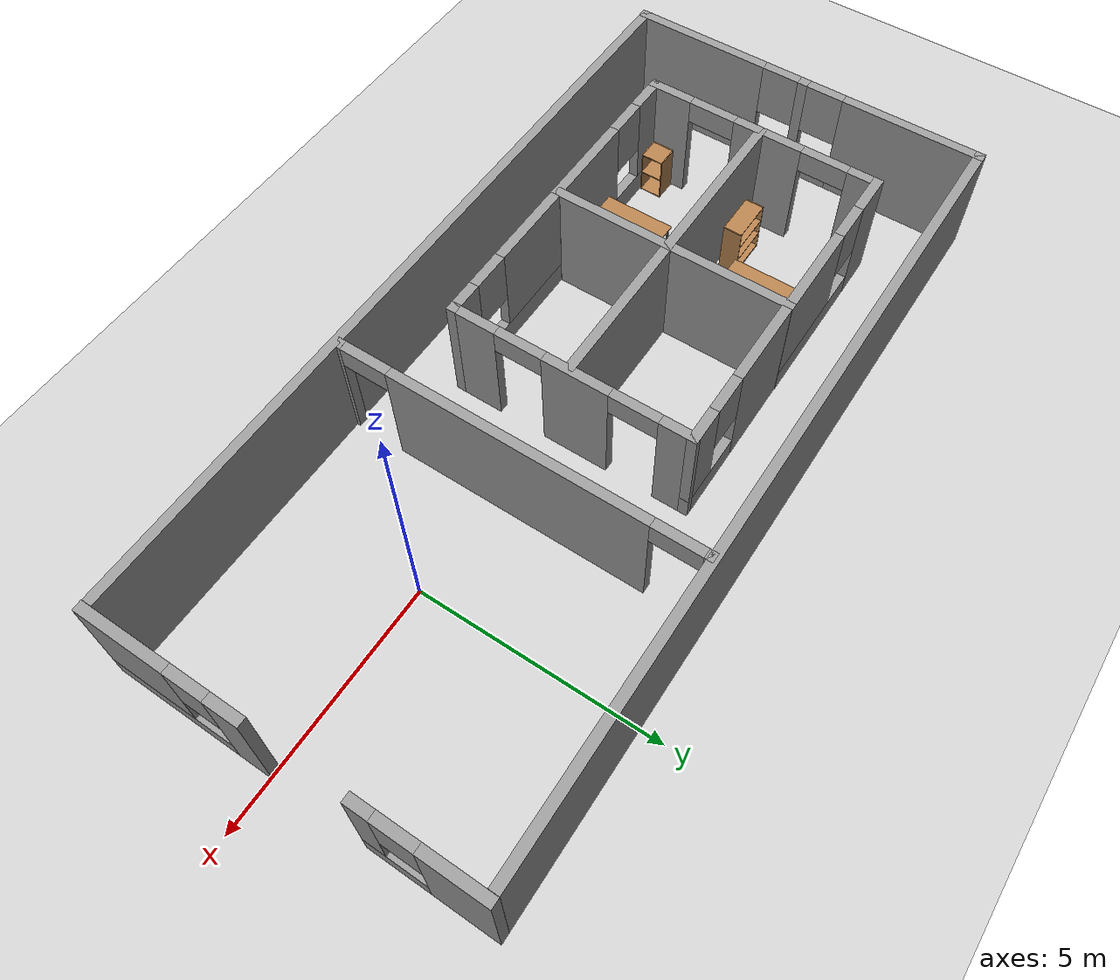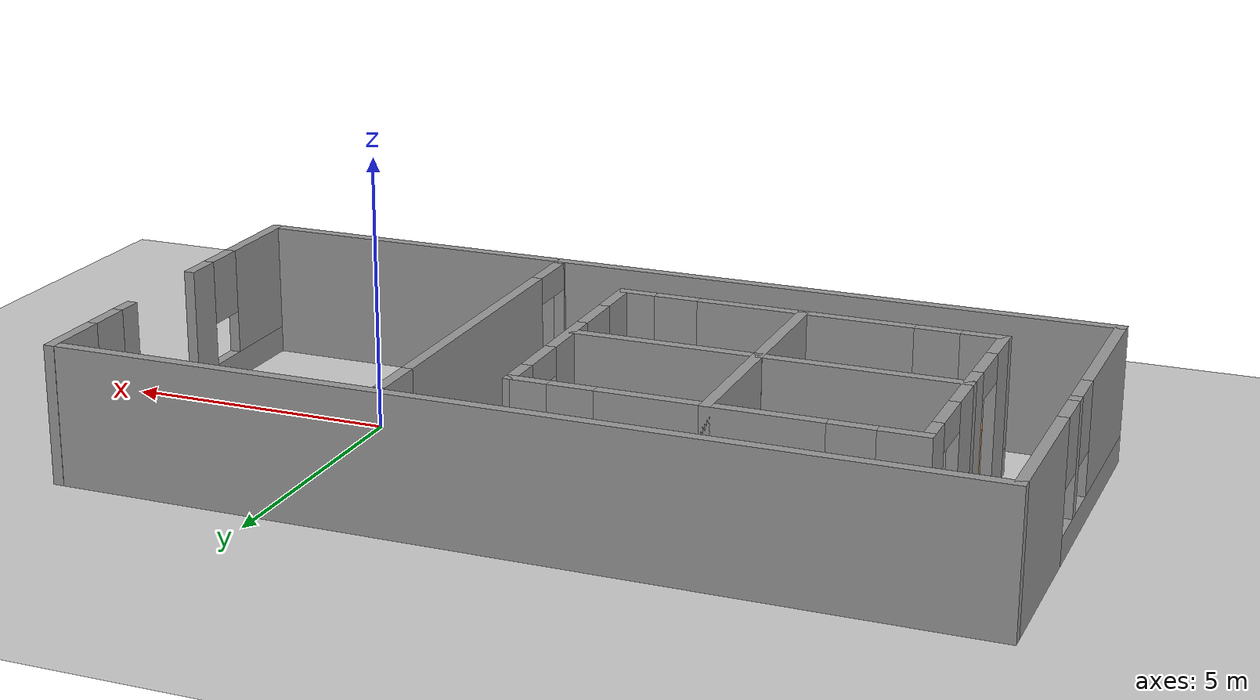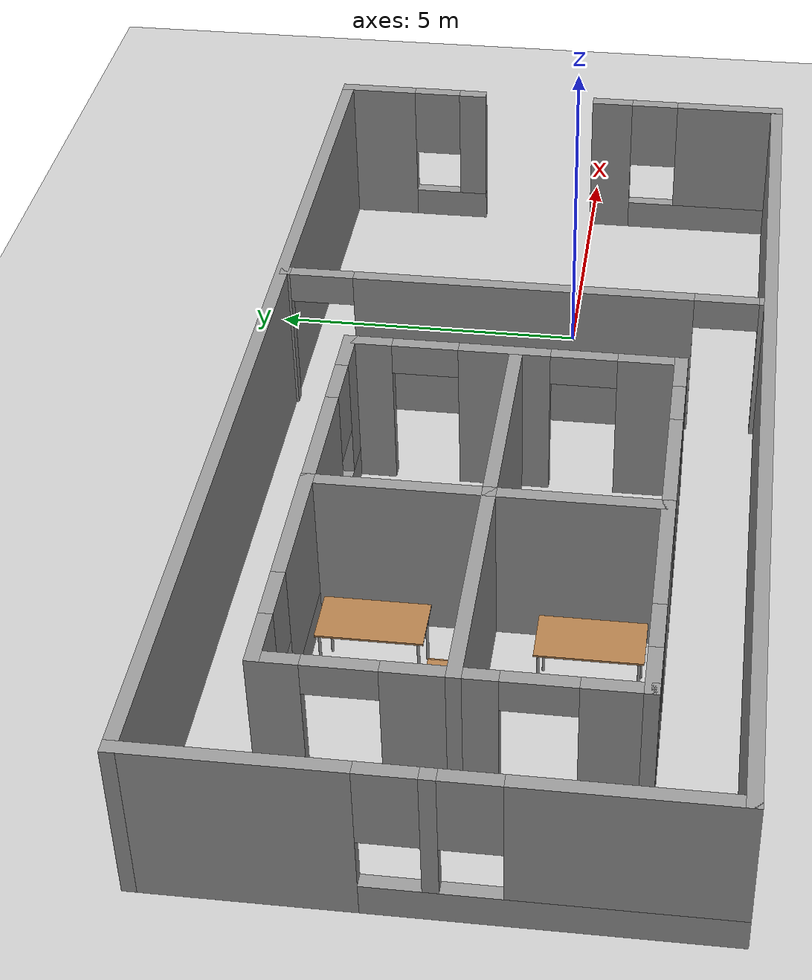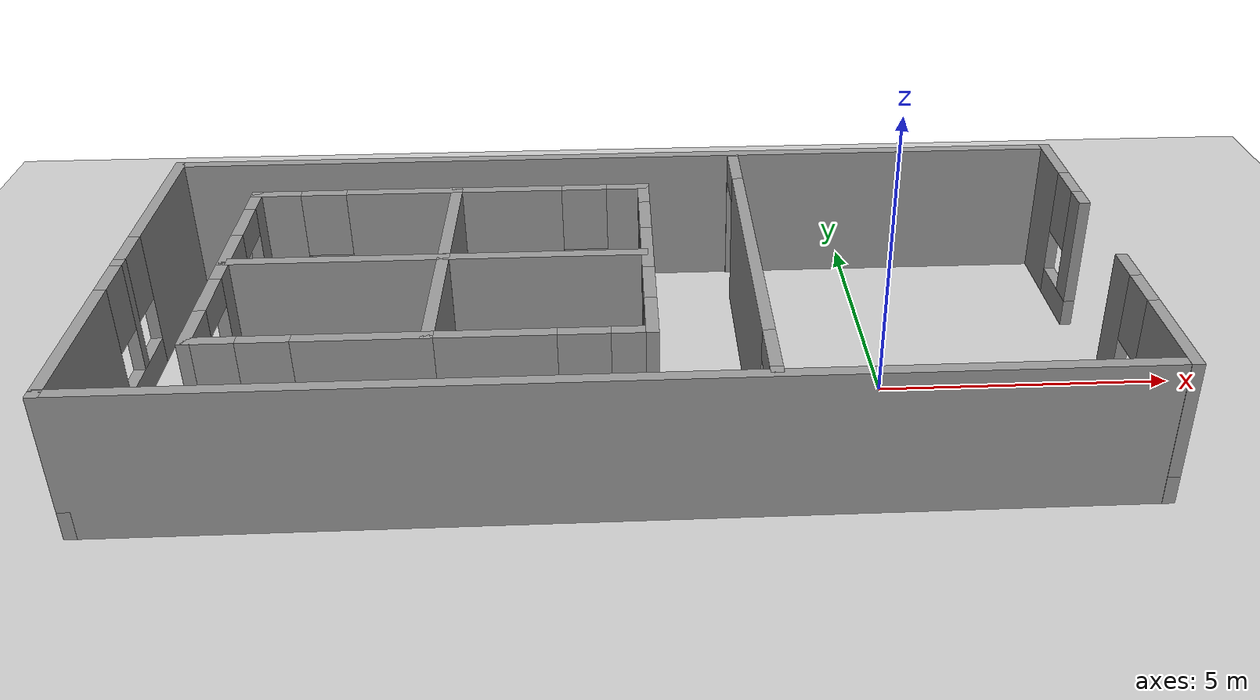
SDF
<sdf version="1.5">
 <world name="default">
  <model name="ground_plane">
   <static>1</static>
   <link name="link">
    <collision name="collision">
     <geometry><plane><normal>0 0 1</normal><size>100 100</size></plane></geometry>
     <surface><friction><ode><mu>100</mu><mu2>50</mu2></ode></friction></surface>
    </collision>
    <visual name="visual">
     <cast_shadows>0</cast_shadows>
     <geometry><plane><normal>0 0 1</normal><size>100 100</size></plane></geometry>
     <material>
      <script><uri>file://media/materials/scripts/gazebo.material</uri><name>Gazebo/Grey</name></script>
     </material>
    </visual>
    <velocity_decay><linear>0</linear><angular>0</angular></velocity_decay>
   </link>
  </model>
  <model name="customSmallBuildingOne">
   <pose>-8 3 0 0 -0 0</pose>
   <link name="Wall_10">
    <collision name="Wall_10_Collision">
     <geometry><box><size>2.65184 0.2 2.5</size></box></geometry>
     <pose>0 0 1.25 0 -0 0</pose>
    </collision>
    <visual name="Wall_10_Visual">
     <pose>0 0 1.25 0 -0 0</pose>
     <geometry><box><size>2.65184 0.2 2.5</size></box></geometry>
     <material>
      <script><uri>file://media/materials/scripts/gazebo.material</uri><name>Gazebo/Grey</name></script>
     </material>
    </visual>
    <velocity_decay><linear>0</linear><angular>0</angular></velocity_decay>
    <pose>0.733857 -3.69181 0 0 0 -1.5708</pose>
   </link>
   <link name="Wall_11">
    <pose>-1.03564 -4.91773 0 0 -0 3.14159</pose>
    <visual name="Wall_11_Visual_0">
     <pose>-0.819487 0 1.25 0 -0 0</pose>
     <geometry><box><size>2.10008 0.2 2.5</size></box></geometry>
     <material>
      <script><uri>file://media/materials/scripts/gazebo.material</uri><name>Gazebo/Grey</name></script>
     </material>
    </visual>
    <collision name="Wall_11_Collision_0">
     <geometry><box><size>2.10008 0.2 2.5</size></box></geometry>
     <pose>-0.819487 0 1.25 0 -0 0</pose>
    </collision>
    <visual name="Wall_11_Visual_1">
     <pose>1.05004 0 0.25 0 -0 0</pose>
     <geometry><box><size>1.63897 0.2 0.5</size></box></geometry>
     <material>
      <script><uri>file://media/materials/scripts/gazebo.material</uri><name>Gazebo/Grey</name></script>
     </material>
    </visual>
    <collision name="Wall_11_Collision_1">
     <geometry><box><size>1.63897 0.2 0.5</size></box></geometry>
     <pose>1.05004 0 0.25 0 -0 0</pose>
    </collision>
    <visual name="Wall_11_Visual_2">
     <pose>1.45004 0 1.5 0 -0 0</pose>
     <geometry><box><size>0.838974 0.2 2</size></box></geometry>
     <material>
      <script><uri>file://media/materials/scripts/gazebo.material</uri><name>Gazebo/Grey</name></script>
     </material>
    </visual>
    <collision name="Wall_11_Collision_2">
     <geometry><box><size>0.838974 0.2 2</size></box></geometry>
     <pose>1.45004 0 1.5 0 -0 0</pose>
    </collision>
    <visual name="Wall_11_Visual_3">
     <pose>0.630556 0 1.9 0 -0 0</pose>
     <geometry><box><size>0.8 0.2 1.2</size></box></geometry>
     <material>
      <script><uri>file://media/materials/scripts/gazebo.material</uri><name>Gazebo/Grey</name></script>
     </material>
    </visual>
    <collision name="Wall_11_Collision_3">
     <geometry><box><size>0.8 0.2 1.2</size></box></geometry>
     <pose>0.630556 0 1.9 0 -0 0</pose>
    </collision>
    <velocity_decay><linear>0</linear><angular>0</angular></velocity_decay>
   </link>
   <link name="Wall_12">
    <pose>-2.80513 -3.73807 0 0 -0 1.5708</pose>
    <visual name="Wall_12_Visual_0">
     <pose>-0.787375 0 1.25 0 -0 0</pose>
     <geometry><box><size>0.984572 0.2 2.5</size></box></geometry>
     <material>
      <script><uri>file://media/materials/scripts/gazebo.material</uri><name>Gazebo/Grey</name></script>
     </material>
    </visual>
    <collision name="Wall_12_Collision_0">
     <geometry><box><size>0.984572 0.2 2.5</size></box></geometry>
     <pose>-0.787375 0 1.25 0 -0 0</pose>
    </collision>
    <visual name="Wall_12_Visual_1">
     <pose>0.992286 0 1.25 0 -0 0</pose>
     <geometry><box><size>0.57475 0.2 2.5</size></box></geometry>
     <material>
      <script><uri>file://media/materials/scripts/gazebo.material</uri><name>Gazebo/Grey</name></script>
     </material>
    </visual>
    <collision name="Wall_12_Collision_1">
     <geometry><box><size>0.57475 0.2 2.5</size></box></geometry>
     <pose>0.992286 0 1.25 0 -0 0</pose>
    </collision>
    <visual name="Wall_12_Visual_2">
     <pose>0.204911 0 2.25 0 -0 0</pose>
     <geometry><box><size>1 0.2 0.5</size></box></geometry>
     <material>
      <script><uri>file://media/materials/scripts/gazebo.material</uri><name>Gazebo/Grey</name></script>
     </material>
    </visual>
    <collision name="Wall_12_Collision_2">
     <geometry><box><size>1 0.2 0.5</size></box></geometry>
     <pose>0.204911 0 2.25 0 -0 0</pose>
    </collision>
    <velocity_decay><linear>0</linear><angular>0</angular></velocity_decay>
   </link>
   <link name="Wall_14">
    <pose>2.49225 0.05375 0 0 0 -0.000166</pose>
    <visual name="Wall_14_Visual_0">
     <pose>-0.782153 0 1.25 0 -0 0</pose>
     <geometry><box><size>1.78542 0.2 2.5</size></box></geometry>
     <material>
      <script><uri>file://media/materials/scripts/gazebo.material</uri><name>Gazebo/Grey</name></script>
     </material>
    </visual>
    <collision name="Wall_14_Collision_0">
     <geometry><box><size>1.78542 0.2 2.5</size></box></geometry>
     <pose>-0.782153 0 1.25 0 -0 0</pose>
    </collision>
    <visual name="Wall_14_Visual_1">
     <pose>0.892709 0 0.25 0 -0 0</pose>
     <geometry><box><size>1.56431 0.2 0.5</size></box></geometry>
     <material>
      <script><uri>file://media/materials/scripts/gazebo.material</uri><name>Gazebo/Grey</name></script>
     </material>
    </visual>
    <collision name="Wall_14_Collision_1">
     <geometry><box><size>1.56431 0.2 0.5</size></box></geometry>
     <pose>0.892709 0 0.25 0 -0 0</pose>
    </collision>
    <visual name="Wall_14_Visual_2">
     <pose>1.29271 0 1.5 0 -0 0</pose>
     <geometry><box><size>0.764306 0.2 2</size></box></geometry>
     <material>
      <script><uri>file://media/materials/scripts/gazebo.material</uri><name>Gazebo/Grey</name></script>
     </material>
    </visual>
    <collision name="Wall_14_Collision_2">
     <geometry><box><size>0.764306 0.2 2</size></box></geometry>
     <pose>1.29271 0 1.5 0 -0 0</pose>
    </collision>
    <visual name="Wall_14_Visual_3">
     <pose>0.510556 0 1.9 0 -0 0</pose>
     <geometry><box><size>0.8 0.2 1.2</size></box></geometry>
     <material>
      <script><uri>file://media/materials/scripts/gazebo.material</uri><name>Gazebo/Grey</name></script>
     </material>
    </visual>
    <collision name="Wall_14_Collision_3">
     <geometry><box><size>0.8 0.2 1.2</size></box></geometry>
     <pose>0.510556 0 1.9 0 -0 0</pose>
    </collision>
    <velocity_decay><linear>0</linear><angular>0</angular></velocity_decay>
   </link>
   <link name="Wall_15">
    <pose>4.06697 -2.43328 0 0 0 -1.5708</pose>
    <visual name="Wall_15_Visual_0">
     <pose>-2.21084 0 1.25 0 -0 0</pose>
     <geometry><box><size>0.751862 0.2 2.5</size></box></geometry>
     <material>
      <script><uri>file://media/materials/scripts/gazebo.material</uri><name>Gazebo/Grey</name></script>
     </material>
    </visual>
    <collision name="Wall_15_Collision_0">
     <geometry><box><size>0.751862 0.2 2.5</size></box></geometry>
     <pose>-2.21084 0 1.25 0 -0 0</pose>
    </collision>
    <visual name="Wall_15_Visual_1">
     <pose>-0.143604 0 1.25 0 -0 0</pose>
     <geometry><box><size>1.38261 0.2 2.5</size></box></geometry>
     <material>
      <script><uri>file://media/materials/scripts/gazebo.material</uri><name>Gazebo/Grey</name></script>
     </material>
    </visual>
    <collision name="Wall_15_Collision_1">
     <geometry><box><size>1.38261 0.2 2.5</size></box></geometry>
     <pose>-0.143604 0 1.25 0 -0 0</pose>
    </collision>
    <visual name="Wall_15_Visual_2">
     <pose>2.06724 0 1.25 0 -0 0</pose>
     <geometry><box><size>1.03907 0.2 2.5</size></box></geometry>
     <material>
      <script><uri>file://media/materials/scripts/gazebo.material</uri><name>Gazebo/Grey</name></script>
     </material>
    </visual>
    <collision name="Wall_15_Collision_2">
     <geometry><box><size>1.03907 0.2 2.5</size></box></geometry>
     <pose>2.06724 0 1.25 0 -0 0</pose>
    </collision>
    <visual name="Wall_15_Visual_3">
     <pose>-1.33491 0 2.25 0 -0 0</pose>
     <geometry><box><size>1 0.2 0.5</size></box></geometry>
     <material>
      <script><uri>file://media/materials/scripts/gazebo.material</uri><name>Gazebo/Grey</name></script>
     </material>
    </visual>
    <collision name="Wall_15_Collision_3">
     <geometry><box><size>1 0.2 0.5</size></box></geometry>
     <pose>-1.33491 0 2.25 0 -0 0</pose>
    </collision>
    <visual name="Wall_15_Visual_4">
     <pose>1.0477 0 2.25 0 -0 0</pose>
     <geometry><box><size>1 0.2 0.5</size></box></geometry>
     <material>
      <script><uri>file://media/materials/scripts/gazebo.material</uri><name>Gazebo/Grey</name></script>
     </material>
    </visual>
    <collision name="Wall_15_Collision_4">
     <geometry><box><size>1 0.2 0.5</size></box></geometry>
     <pose>1.0477 0 2.25 0 -0 0</pose>
    </collision>
    <velocity_decay><linear>0</linear><angular>0</angular></velocity_decay>
   </link>
   <link name="Wall_16">
    <pose>2.49625 -4.92005 0 0 -0 3.14159</pose>
    <visual name="Wall_16_Visual_0">
     <pose>-1.31164 0 1.25 0 -0 0</pose>
     <geometry><box><size>0.718161 0.2 2.5</size></box></geometry>
     <material>
      <script><uri>file://media/materials/scripts/gazebo.material</uri><name>Gazebo/Grey</name></script>
     </material>
    </visual>
    <collision name="Wall_16_Collision_0">
     <geometry><box><size>0.718161 0.2 2.5</size></box></geometry>
     <pose>-1.31164 0 1.25 0 -0 0</pose>
    </collision>
    <visual name="Wall_16_Visual_1">
     <pose>0.35908 0 0.25 0 -0 0</pose>
     <geometry><box><size>2.62327 0.2 0.5</size></box></geometry>
     <material>
      <script><uri>file://media/materials/scripts/gazebo.material</uri><name>Gazebo/Grey</name></script>
     </material>
    </visual>
    <collision name="Wall_16_Collision_1">
     <geometry><box><size>2.62327 0.2 0.5</size></box></geometry>
     <pose>0.35908 0 0.25 0 -0 0</pose>
    </collision>
    <visual name="Wall_16_Visual_2">
     <pose>0.75908 0 1.5 0 -0 0</pose>
     <geometry><box><size>1.82327 0.2 2</size></box></geometry>
     <material>
      <script><uri>file://media/materials/scripts/gazebo.material</uri><name>Gazebo/Grey</name></script>
     </material>
    </visual>
    <collision name="Wall_16_Collision_2">
     <geometry><box><size>1.82327 0.2 2</size></box></geometry>
     <pose>0.75908 0 1.5 0 -0 0</pose>
    </collision>
    <visual name="Wall_16_Visual_3">
     <pose>-0.552556 0 1.9 0 -0 0</pose>
     <geometry><box><size>0.8 0.2 1.2</size></box></geometry>
     <material>
      <script><uri>file://media/materials/scripts/gazebo.material</uri><name>Gazebo/Grey</name></script>
     </material>
    </visual>
    <collision name="Wall_16_Collision_3">
     <geometry><box><size>0.8 0.2 1.2</size></box></geometry>
     <pose>-0.552556 0 1.9 0 -0 0</pose>
    </collision>
    <velocity_decay><linear>0</linear><angular>0</angular></velocity_decay>
   </link>
   <link name="Wall_18">
    <collision name="Wall_18_Collision">
     <geometry><box><size>3.35035 0.2 2.5</size></box></geometry>
     <pose>0 0 1.25 0 -0 0</pose>
    </collision>
    <visual name="Wall_18_Visual">
     <pose>0 0 1.25 0 -0 0</pose>
     <geometry><box><size>3.35035 0.2 2.5</size></box></geometry>
     <material>
      <script><uri>file://media/materials/scripts/gazebo.material</uri><name>Gazebo/Grey</name></script>
     </material>
    </visual>
    <velocity_decay><linear>0</linear><angular>0</angular></velocity_decay>
    <pose>2.40459 -2.46784 0 0 -0 0</pose>
   </link>
   <link name="Wall_20">
    <collision name="Wall_20_Collision">
     <geometry><box><size>16.3321 0.2 2.5</size></box></geometry>
     <pose>0 0 1.25 0 -0 0</pose>
    </collision>
    <visual name="Wall_20_Visual">
     <pose>0 0 1.25 0 -0 0</pose>
     <geometry><box><size>16.3321 0.2 2.5</size></box></geometry>
     <material>
      <script><uri>file://media/materials/scripts/gazebo.material</uri><name>Gazebo/Grey</name></script>
     </material>
    </visual>
    <velocity_decay><linear>0</linear><angular>0</angular></velocity_decay>
    <pose>3.54751 1.432 0 0 -0 3.14159</pose>
   </link>
   <link name="Wall_21">
    <pose>-4.51852 -2.38615 0 0 0 -1.5708</pose>
    <visual name="Wall_21_Visual_0">
     <pose>-2.40862 0 1.25 0 -0 0</pose>
     <geometry><box><size>3.01908 0.2 2.5</size></box></geometry>
     <material>
      <script><uri>file://media/materials/scripts/gazebo.material</uri><name>Gazebo/Grey</name></script>
     </material>
    </visual>
    <collision name="Wall_21_Collision_0">
     <geometry><box><size>3.01908 0.2 2.5</size></box></geometry>
     <pose>-2.40862 0 1.25 0 -0 0</pose>
    </collision>
    <visual name="Wall_21_Visual_1">
     <pose>1.50954 0 0.25 0 -0 0</pose>
     <geometry><box><size>4.81724 0.2 0.5</size></box></geometry>
     <material>
      <script><uri>file://media/materials/scripts/gazebo.material</uri><name>Gazebo/Grey</name></script>
     </material>
    </visual>
    <collision name="Wall_21_Collision_1">
     <geometry><box><size>4.81724 0.2 0.5</size></box></geometry>
     <pose>1.50954 0 0.25 0 -0 0</pose>
    </collision>
    <visual name="Wall_21_Visual_2">
     <pose>0.008131 0 1.5 0 -0 0</pose>
     <geometry><box><size>0.214424 0.2 2</size></box></geometry>
     <material>
      <script><uri>file://media/materials/scripts/gazebo.material</uri><name>Gazebo/Grey</name></script>
     </material>
    </visual>
    <collision name="Wall_21_Collision_2">
     <geometry><box><size>0.214424 0.2 2</size></box></geometry>
     <pose>0.008131 0 1.5 0 -0 0</pose>
    </collision>
    <visual name="Wall_21_Visual_3">
     <pose>2.41675 0 1.5 0 -0 0</pose>
     <geometry><box><size>3.00281 0.2 2</size></box></geometry>
     <material>
      <script><uri>file://media/materials/scripts/gazebo.material</uri><name>Gazebo/Grey</name></script>
     </material>
    </visual>
    <collision name="Wall_21_Collision_3">
     <geometry><box><size>3.00281 0.2 2</size></box></geometry>
     <pose>2.41675 0 1.5 0 -0 0</pose>
    </collision>
    <visual name="Wall_21_Visual_4">
     <pose>-0.499081 0 1.9 0 -0 0</pose>
     <geometry><box><size>0.8 0.2 1.2</size></box></geometry>
     <material>
      <script><uri>file://media/materials/scripts/gazebo.material</uri><name>Gazebo/Grey</name></script>
     </material>
    </visual>
    <collision name="Wall_21_Collision_4">
     <geometry><box><size>0.8 0.2 1.2</size></box></geometry>
     <pose>-0.499081 0 1.9 0 -0 0</pose>
    </collision>
    <visual name="Wall_21_Visual_5">
     <pose>0.515343 0 1.9 0 -0 0</pose>
     <geometry><box><size>0.8 0.2 1.2</size></box></geometry>
     <material>
      <script><uri>file://media/materials/scripts/gazebo.material</uri><name>Gazebo/Grey</name></script>
     </material>
    </visual>
    <collision name="Wall_21_Collision_5">
     <geometry><box><size>0.8 0.2 1.2</size></box></geometry>
     <pose>0.515343 0 1.9 0 -0 0</pose>
    </collision>
    <velocity_decay><linear>0</linear><angular>0</angular></velocity_decay>
   </link>
   <link name="Wall_22">
    <collision name="Wall_22_Collision">
     <geometry><box><size>16.332 0.2 2.5</size></box></geometry>
     <pose>0 0 1.25 0 -0 0</pose>
    </collision>
    <visual name="Wall_22_Visual">
     <pose>0 0 1.25 0 -0 0</pose>
     <geometry><box><size>16.332 0.2 2.5</size></box></geometry>
     <material>
      <script><uri>file://media/materials/scripts/gazebo.material</uri><name>Gazebo/Grey</name></script>
     </material>
    </visual>
    <velocity_decay><linear>0</linear><angular>0</angular></velocity_decay>
    <pose>3.54748 -6.20431 0 0 -0 0</pose>
   </link>
   <link name="Wall_26">
    <pose>11.8165 0.244091 0 0 0 -1.5708</pose>
    <visual name="Wall_26_Visual_0">
     <pose>-0.634637 0 1.25 0 -0 0</pose>
     <geometry><box><size>1.30861 0.2 2.5</size></box></geometry>
     <material>
      <script><uri>file://media/materials/scripts/gazebo.material</uri><name>Gazebo/Grey</name></script>
     </material>
    </visual>
    <collision name="Wall_26_Collision_0">
     <geometry><box><size>1.30861 0.2 2.5</size></box></geometry>
     <pose>-0.634637 0 1.25 0 -0 0</pose>
    </collision>
    <visual name="Wall_26_Visual_1">
     <pose>0.654305 0 0.25 0 -0 0</pose>
     <geometry><box><size>1.26927 0.2 0.5</size></box></geometry>
     <material>
      <script><uri>file://media/materials/scripts/gazebo.material</uri><name>Gazebo/Grey</name></script>
     </material>
    </visual>
    <collision name="Wall_26_Collision_1">
     <geometry><box><size>1.26927 0.2 0.5</size></box></geometry>
     <pose>0.654305 0 0.25 0 -0 0</pose>
    </collision>
    <visual name="Wall_26_Visual_2">
     <pose>1.05431 0 1.5 0 -0 0</pose>
     <geometry><box><size>0.469275 0.2 2</size></box></geometry>
     <material>
      <script><uri>file://media/materials/scripts/gazebo.material</uri><name>Gazebo/Grey</name></script>
     </material>
    </visual>
    <collision name="Wall_26_Collision_2">
     <geometry><box><size>0.469275 0.2 2</size></box></geometry>
     <pose>1.05431 0 1.5 0 -0 0</pose>
    </collision>
    <visual name="Wall_26_Visual_3">
     <pose>0.419668 0 1.9 0 -0 0</pose>
     <geometry><box><size>0.8 0.2 1.2</size></box></geometry>
     <material>
      <script><uri>file://media/materials/scripts/gazebo.material</uri><name>Gazebo/Grey</name></script>
     </material>
    </visual>
    <collision name="Wall_26_Collision_3">
     <geometry><box><size>0.8 0.2 1.2</size></box></geometry>
     <pose>0.419668 0 1.9 0 -0 0</pose>
    </collision>
    <velocity_decay><linear>0</linear><angular>0</angular></velocity_decay>
   </link>
   <link name="Wall_28">
    <pose>11.8165 -4.63463 0 0 0 -1.5708</pose>
    <visual name="Wall_28_Visual_0">
     <pose>-1.32234 0 1.25 0 -0 0</pose>
     <geometry><box><size>0.702876 0.2 2.5</size></box></geometry>
     <material>
      <script><uri>file://media/materials/scripts/gazebo.material</uri><name>Gazebo/Grey</name></script>
     </material>
    </visual>
    <collision name="Wall_28_Collision_0">
     <geometry><box><size>0.702876 0.2 2.5</size></box></geometry>
     <pose>-1.32234 0 1.25 0 -0 0</pose>
    </collision>
    <visual name="Wall_28_Visual_1">
     <pose>0.351438 0 0.25 0 -0 0</pose>
     <geometry><box><size>2.64467 0.2 0.5</size></box></geometry>
     <material>
      <script><uri>file://media/materials/scripts/gazebo.material</uri><name>Gazebo/Grey</name></script>
     </material>
    </visual>
    <collision name="Wall_28_Collision_1">
     <geometry><box><size>2.64467 0.2 0.5</size></box></geometry>
     <pose>0.351438 0 0.25 0 -0 0</pose>
    </collision>
    <visual name="Wall_28_Visual_2">
     <pose>0.751438 0 1.5 0 -0 0</pose>
     <geometry><box><size>1.84467 0.2 2</size></box></geometry>
     <material>
      <script><uri>file://media/materials/scripts/gazebo.material</uri><name>Gazebo/Grey</name></script>
     </material>
    </visual>
    <collision name="Wall_28_Collision_2">
     <geometry><box><size>1.84467 0.2 2</size></box></geometry>
     <pose>0.751438 0 1.5 0 -0 0</pose>
    </collision>
    <visual name="Wall_28_Visual_3">
     <pose>-0.570899 0 1.9 0 -0 0</pose>
     <geometry><box><size>0.8 0.2 1.2</size></box></geometry>
     <material>
      <script><uri>file://media/materials/scripts/gazebo.material</uri><name>Gazebo/Grey</name></script>
     </material>
    </visual>
    <collision name="Wall_28_Collision_3">
     <geometry><box><size>0.8 0.2 1.2</size></box></geometry>
     <pose>-0.570899 0 1.9 0 -0 0</pose>
    </collision>
    <velocity_decay><linear>0</linear><angular>0</angular></velocity_decay>
   </link>
   <link name="Wall_30">
    <pose>5.79523 -2.38415 0 0 0 -1.5708</pose>
    <visual name="Wall_30_Visual_0">
     <pose>-3.75962 0 1.25 0 -0 0</pose>
     <geometry><box><size>0.16612 0.2 2.5</size></box></geometry>
     <material>
      <script><uri>file://media/materials/scripts/gazebo.material</uri><name>Gazebo/Grey</name></script>
     </material>
    </visual>
    <collision name="Wall_30_Collision_0">
     <geometry><box><size>0.16612 0.2 2.5</size></box></geometry>
     <pose>-3.75962 0 1.25 0 -0 0</pose>
    </collision>
    <visual name="Wall_30_Visual_1">
     <pose>-0.0137 0 1.25 0 -0 0</pose>
     <geometry><box><size>5.32571 0.2 2.5</size></box></geometry>
     <material>
      <script><uri>file://media/materials/scripts/gazebo.material</uri><name>Gazebo/Grey</name></script>
     </material>
    </visual>
    <collision name="Wall_30_Collision_1">
     <geometry><box><size>5.32571 0.2 2.5</size></box></geometry>
     <pose>-0.0137 0 1.25 0 -0 0</pose>
    </collision>
    <visual name="Wall_30_Visual_2">
     <pose>3.74592 0 1.25 0 -0 0</pose>
     <geometry><box><size>0.193521 0.2 2.5</size></box></geometry>
     <material>
      <script><uri>file://media/materials/scripts/gazebo.material</uri><name>Gazebo/Grey</name></script>
     </material>
    </visual>
    <collision name="Wall_30_Collision_2">
     <geometry><box><size>0.193521 0.2 2.5</size></box></geometry>
     <pose>3.74592 0 1.25 0 -0 0</pose>
    </collision>
    <visual name="Wall_30_Visual_3">
     <pose>-3.17656 0 2.25 0 -0 0</pose>
     <geometry><box><size>1 0.2 0.5</size></box></geometry>
     <material>
      <script><uri>file://media/materials/scripts/gazebo.material</uri><name>Gazebo/Grey</name></script>
     </material>
    </visual>
    <collision name="Wall_30_Collision_3">
     <geometry><box><size>1 0.2 0.5</size></box></geometry>
     <pose>-3.17656 0 2.25 0 -0 0</pose>
    </collision>
    <visual name="Wall_30_Visual_4">
     <pose>3.14915 0 2.25 0 -0 0</pose>
     <geometry><box><size>1 0.2 0.5</size></box></geometry>
     <material>
      <script><uri>file://media/materials/scripts/gazebo.material</uri><name>Gazebo/Grey</name></script>
     </material>
    </visual>
    <collision name="Wall_30_Collision_4">
     <geometry><box><size>1 0.2 0.5</size></box></geometry>
     <pose>3.14915 0 2.25 0 -0 0</pose>
    </collision>
    <velocity_decay><linear>0</linear><angular>0</angular></velocity_decay>
   </link>
   <link name="Wall_5">
    <pose>-1.03527 0.061251 0 0 -0 0</pose>
    <visual name="Wall_5_Visual_0">
     <pose>-1.43006 0 1.25 0 -0 0</pose>
     <geometry><box><size>0.879876 0.2 2.5</size></box></geometry>
     <material>
      <script><uri>file://media/materials/scripts/gazebo.material</uri><name>Gazebo/Grey</name></script>
     </material>
    </visual>
    <collision name="Wall_5_Collision_0">
     <geometry><box><size>0.879876 0.2 2.5</size></box></geometry>
     <pose>-1.43006 0 1.25 0 -0 0</pose>
    </collision>
    <visual name="Wall_5_Visual_1">
     <pose>0.439938 0 0.25 0 -0 0</pose>
     <geometry><box><size>2.86012 0.2 0.5</size></box></geometry>
     <material>
      <script><uri>file://media/materials/scripts/gazebo.material</uri><name>Gazebo/Grey</name></script>
     </material>
    </visual>
    <collision name="Wall_5_Collision_1">
     <geometry><box><size>2.86012 0.2 0.5</size></box></geometry>
     <pose>0.439938 0 0.25 0 -0 0</pose>
    </collision>
    <visual name="Wall_5_Visual_2">
     <pose>0.839938 0 1.5 0 -0 0</pose>
     <geometry><box><size>2.06012 0.2 2</size></box></geometry>
     <material>
      <script><uri>file://media/materials/scripts/gazebo.material</uri><name>Gazebo/Grey</name></script>
     </material>
    </visual>
    <collision name="Wall_5_Collision_2">
     <geometry><box><size>2.06012 0.2 2</size></box></geometry>
     <pose>0.839938 0 1.5 0 -0 0</pose>
    </collision>
    <visual name="Wall_5_Visual_3">
     <pose>-0.590124 0 1.9 0 -0 0</pose>
     <geometry><box><size>0.8 0.2 1.2</size></box></geometry>
     <material>
      <script><uri>file://media/materials/scripts/gazebo.material</uri><name>Gazebo/Grey</name></script>
     </material>
    </visual>
    <collision name="Wall_5_Collision_3">
     <geometry><box><size>0.8 0.2 1.2</size></box></geometry>
     <pose>-0.590124 0 1.9 0 -0 0</pose>
    </collision>
    <velocity_decay><linear>0</linear><angular>0</angular></velocity_decay>
   </link>
   <link name="Wall_6">
    <collision name="Wall_6_Collision">
     <geometry><box><size>2.73 0.2 2.5</size></box></geometry>
     <pose>0 0 1.25 0 -0 0</pose>
    </collision>
    <visual name="Wall_6_Visual">
     <pose>0 0 1.25 0 -0 0</pose>
     <geometry><box><size>2.73 0.2 2.5</size></box></geometry>
     <material>
      <script><uri>file://media/materials/scripts/gazebo.material</uri><name>Gazebo/Grey</name></script>
     </material>
    </visual>
    <velocity_decay><linear>0</linear><angular>0</angular></velocity_decay>
    <pose>0.734733 -1.20375 0 0 0 -1.5708</pose>
   </link>
   <link name="Wall_7">
    <collision name="Wall_7_Collision">
     <geometry><box><size>3.74002 0.2 2.5</size></box></geometry>
     <pose>0 0 1.25 0 -0 0</pose>
    </collision>
    <visual name="Wall_7_Visual">
     <pose>0 0 1.25 0 -0 0</pose>
     <geometry><box><size>3.74002 0.2 2.5</size></box></geometry>
     <material>
      <script><uri>file://media/materials/scripts/gazebo.material</uri><name>Gazebo/Grey</name></script>
     </material>
    </visual>
    <velocity_decay><linear>0</linear><angular>0</angular></velocity_decay>
    <pose>-1.03527 -2.46884 0 0 0 -3.14154</pose>
   </link>
   <link name="Wall_8">
    <pose>-2.80527 -1.20384 0 0 -0 1.5708</pose>
    <visual name="Wall_8_Visual_0">
     <pose>-0.847475 0 1.25 0 -0 0</pose>
     <geometry><box><size>1.03513 0.2 2.5</size></box></geometry>
     <material>
      <script><uri>file://media/materials/scripts/gazebo.material</uri><name>Gazebo/Grey</name></script>
     </material>
    </visual>
    <collision name="Wall_8_Collision_0">
     <geometry><box><size>1.03513 0.2 2.5</size></box></geometry>
     <pose>-0.847475 0 1.25 0 -0 0</pose>
    </collision>
    <visual name="Wall_8_Visual_1">
     <pose>1.01756 0 1.25 0 -0 0</pose>
     <geometry><box><size>0.694951 0.2 2.5</size></box></geometry>
     <material>
      <script><uri>file://media/materials/scripts/gazebo.material</uri><name>Gazebo/Grey</name></script>
     </material>
    </visual>
    <collision name="Wall_8_Collision_1">
     <geometry><box><size>0.694951 0.2 2.5</size></box></geometry>
     <pose>1.01756 0 1.25 0 -0 0</pose>
    </collision>
    <visual name="Wall_8_Visual_2">
     <pose>0.170089 0 2.25 0 -0 0</pose>
     <geometry><box><size>1 0.2 0.5</size></box></geometry>
     <material>
      <script><uri>file://media/materials/scripts/gazebo.material</uri><name>Gazebo/Grey</name></script>
     </material>
    </visual>
    <collision name="Wall_8_Collision_2">
     <geometry><box><size>1 0.2 0.5</size></box></geometry>
     <pose>0.170089 0 2.25 0 -0 0</pose>
    </collision>
    <velocity_decay><linear>0</linear><angular>0</angular></velocity_decay>
   </link>
   <static>1</static>
  </model>
  <model name="table_1">
   <static>1</static>
   <link name="link">
    <collision name="surface">
     <pose>0 0 1 0 -0 0</pose>
     <geometry><box><size>1.5 0.8 0.03</size></box></geometry>
     <surface><friction><ode><mu>0.6</mu><mu2>0.6</mu2></ode></friction></surface>
    </collision>
    <visual name="visual1">
     <pose>0 0 1 0 -0 0</pose>
     <geometry><box><size>1.5 0.8 0.03</size></box></geometry>
     <material>
      <script><uri>file://media/materials/scripts/gazebo.material</uri><name>Gazebo/Wood</name></script>
     </material>
    </visual>
    <collision name="front_left_leg">
     <pose>0.68 0.38 0.5 0 -0 0</pose>
     <geometry><cylinder><radius>0.02</radius><length>1</length></cylinder></geometry>
    </collision>
    <visual name="front_left_leg">
     <pose>0.68 0.38 0.5 0 -0 0</pose>
     <geometry><cylinder><radius>0.02</radius><length>1</length></cylinder></geometry>
     <material>
      <script><uri>file://media/materials/scripts/gazebo.material</uri><name>Gazebo/Grey</name></script>
     </material>
    </visual>
    <collision name="front_right_leg">
     <pose>0.68 -0.38 0.5 0 -0 0</pose>
     <geometry><cylinder><radius>0.02</radius><length>1</length></cylinder></geometry>
    </collision>
    <visual name="front_right_leg">
     <pose>0.68 -0.38 0.5 0 -0 0</pose>
     <geometry><cylinder><radius>0.02</radius><length>1</length></cylinder></geometry>
     <material>
      <script><uri>file://media/materials/scripts/gazebo.material</uri><name>Gazebo/Grey</name></script>
     </material>
    </visual>
    <collision name="back_right_leg">
     <pose>-0.68 -0.38 0.5 0 -0 0</pose>
     <geometry><cylinder><radius>0.02</radius><length>1</length></cylinder></geometry>
    </collision>
    <visual name="back_right_leg">
     <pose>-0.68 -0.38 0.5 0 -0 0</pose>
     <geometry><cylinder><radius>0.02</radius><length>1</length></cylinder></geometry>
     <material>
      <script><uri>file://media/materials/scripts/gazebo.material</uri><name>Gazebo/Grey</name></script>
     </material>
    </visual>
    <collision name="back_left_leg">
     <pose>-0.68 0.38 0.5 0 -0 0</pose>
     <geometry><cylinder><radius>0.02</radius><length>1</length></cylinder></geometry>
    </collision>
    <visual name="back_left_leg">
     <pose>-0.68 0.38 0.5 0 -0 0</pose>
     <geometry><cylinder><radius>0.02</radius><length>1</length></cylinder></geometry>
     <material>
      <script><uri>file://media/materials/scripts/gazebo.material</uri><name>Gazebo/Grey</name></script>
     </material>
    </visual>
    <velocity_decay><linear>0</linear><angular>0</angular></velocity_decay>
   </link>
   <pose>-8.41122 2 0 0 -0 1.57</pose>
  </model>
  <model name="table_2">
   <static>1</static>
   <link name="link">
    <collision name="surface">
     <pose>0 0 1 0 -0 0</pose>
     <geometry><box><size>1.5 0.8 0.03</size></box></geometry>
     <surface><friction><ode><mu>0.6</mu><mu2>0.6</mu2></ode></friction></surface>
    </collision>
    <visual name="visual1">
     <pose>0 0 1 0 -0 0</pose>
     <geometry><box><size>1.5 0.8 0.03</size></box></geometry>
     <material>
      <script><uri>file://media/materials/scripts/gazebo.material</uri><name>Gazebo/Wood</name></script>
     </material>
    </visual>
    <collision name="front_left_leg">
     <pose>0.68 0.38 0.5 0 -0 0</pose>
     <geometry><cylinder><radius>0.02</radius><length>1</length></cylinder></geometry>
    </collision>
    <visual name="front_left_leg">
     <pose>0.68 0.38 0.5 0 -0 0</pose>
     <geometry><cylinder><radius>0.02</radius><length>1</length></cylinder></geometry>
     <material>
      <script><uri>file://media/materials/scripts/gazebo.material</uri><name>Gazebo/Grey</name></script>
     </material>
    </visual>
    <collision name="front_right_leg">
     <pose>0.68 -0.38 0.5 0 -0 0</pose>
     <geometry><cylinder><radius>0.02</radius><length>1</length></cylinder></geometry>
    </collision>
    <visual name="front_right_leg">
     <pose>0.68 -0.38 0.5 0 -0 0</pose>
     <geometry><cylinder><radius>0.02</radius><length>1</length></cylinder></geometry>
     <material>
      <script><uri>file://media/materials/scripts/gazebo.material</uri><name>Gazebo/Grey</name></script>
     </material>
    </visual>
    <collision name="back_right_leg">
     <pose>-0.68 -0.38 0.5 0 -0 0</pose>
     <geometry><cylinder><radius>0.02</radius><length>1</length></cylinder></geometry>
    </collision>
    <visual name="back_right_leg">
     <pose>-0.68 -0.38 0.5 0 -0 0</pose>
     <geometry><cylinder><radius>0.02</radius><length>1</length></cylinder></geometry>
     <material>
      <script><uri>file://media/materials/scripts/gazebo.material</uri><name>Gazebo/Grey</name></script>
     </material>
    </visual>
    <collision name="back_left_leg">
     <pose>-0.68 0.38 0.5 0 -0 0</pose>
     <geometry><cylinder><radius>0.02</radius><length>1</length></cylinder></geometry>
    </collision>
    <visual name="back_left_leg">
     <pose>-0.68 0.38 0.5 0 -0 0</pose>
     <geometry><cylinder><radius>0.02</radius><length>1</length></cylinder></geometry>
     <material>
      <script><uri>file://media/materials/scripts/gazebo.material</uri><name>Gazebo/Grey</name></script>
     </material>
    </visual>
    <velocity_decay><linear>0</linear><angular>0</angular></velocity_decay>
   </link>
   <pose>-8.45086 -1 0 0 -0 1.57</pose>
  </model>
  <model name="bookshelf">
   <static>1</static>
   <link name="link">
    <inertial><mass>1</mass></inertial>
    <collision name="back">
     <pose>0 0.005 0.6 0 -0 0</pose>
     <geometry><box><size>0.9 0.01 1.2</size></box></geometry>
    </collision>
    <visual name="visual1">
     <pose>0 0.005 0.6 0 -0 0</pose>
     <geometry><box><size>0.9 0.01 1.2</size></box></geometry>
     <material>
      <script><uri>file://media/materials/scripts/gazebo.material</uri><name>Gazebo/Wood</name></script>
     </material>
    </visual>
    <collision name="left_side">
     <pose>0.45 -0.195 0.6 0 -0 0</pose>
     <geometry><box><size>0.02 0.4 1.2</size></box></geometry>
    </collision>
    <visual name="visual2">
     <pose>0.45 -0.195 0.6 0 -0 0</pose>
     <geometry><box><size>0.02 0.4 1.2</size></box></geometry>
     <material>
      <script><uri>file://media/materials/scripts/gazebo.material</uri><name>Gazebo/Wood</name></script>
     </material>
    </visual>
    <collision name="right_side">
     <pose>-0.45 -0.195 0.6 0 -0 0</pose>
     <geometry><box><size>0.02 0.4 1.2</size></box></geometry>
    </collision>
    <visual name="visual3">
     <pose>-0.45 -0.195 0.6 0 -0 0</pose>
     <geometry><box><size>0.02 0.4 1.2</size></box></geometry>
     <material>
      <script><uri>file://media/materials/scripts/gazebo.material</uri><name>Gazebo/Wood</name></script>
     </material>
    </visual>
    <collision name="bottom">
     <pose>0 -0.195 0.03 0 -0 0</pose>
     <geometry><box><size>0.88 0.4 0.06</size></box></geometry>
    </collision>
    <visual name="visual4">
     <pose>0 -0.195 0.03 0 -0 0</pose>
     <geometry><box><size>0.88 0.4 0.06</size></box></geometry>
     <material>
      <script><uri>file://media/materials/scripts/gazebo.material</uri><name>Gazebo/Wood</name></script>
     </material>
    </visual>
    <collision name="top">
     <pose>0 -0.195 1.19 0 -0 0</pose>
     <geometry><box><size>0.88 0.4 0.02</size></box></geometry>
    </collision>
    <visual name="visual5">
     <pose>0 -0.195 1.19 0 -0 0</pose>
     <geometry><box><size>0.88 0.4 0.02</size></box></geometry>
     <material>
      <script><uri>file://media/materials/scripts/gazebo.material</uri><name>Gazebo/Wood</name></script>
     </material>
    </visual>
    <collision name="low_shelf">
     <pose>0 -0.195 0.43 0 -0 0</pose>
     <geometry><box><size>0.88 0.4 0.02</size></box></geometry>
    </collision>
    <visual name="visual6">
     <pose>0 -0.195 0.43 0 -0 0</pose>
     <geometry><box><size>0.88 0.4 0.02</size></box></geometry>
     <material>
      <script><uri>file://media/materials/scripts/gazebo.material</uri><name>Gazebo/Wood</name></script>
     </material>
    </visual>
    <collision name="high_shelf">
     <pose>0 -0.195 0.8 0 -0 0</pose>
     <geometry><box><size>0.88 0.4 0.02</size></box></geometry>
    </collision>
    <visual name="visual7">
     <pose>0 -0.195 0.8 0 -0 0</pose>
     <geometry><box><size>0.88 0.4 0.02</size></box></geometry>
     <material>
      <script><uri>file://media/materials/scripts/gazebo.material</uri><name>Gazebo/Wood</name></script>
     </material>
    </visual>
    <velocity_decay><linear>0</linear><angular>0</angular></velocity_decay>
   </link>
   <pose>-9.71824 0.716207 0 0 -0 3.14</pose>
  </model>
  <model name="cabinet_0">
   <static>1</static>
   <link name="cabinet_bottom_plate">
    <inertial>
     <pose>0 0 -1 0 -0 0</pose>
     <inertia><ixx>2.05</ixx><ixy>0</ixy><ixz>0</ixz><iyy>2.05</iyy><iyz>0</iyz><izz>2.05</izz></inertia>
     <mass>25</mass>
    </inertial>
    <collision name="cabinet_bottom_plate_geom">
     <pose>0 0 0.01 0 -0 0</pose>
     <geometry><box><size>0.45 0.45 0.02</size></box></geometry>
    </collision>
    <visual name="cabinet_bottom_plate_geom_visual">
     <pose>0 0 0.01 0 -0 0</pose>
     <geometry><box><size>0.45 0.45 0.02</size></box></geometry>
     <material>
      <script><uri>file://media/materials/scripts/gazebo.material</uri><name>Gazebo/Wood</name></script>
     </material>
    </visual>
    <collision name="cabinet_bottom_plate_geom_cabinet_back_plate">
     <pose>0.235 0 0.51 0 -0 0</pose>
     <geometry><box><size>0.02 0.45 1.02</size></box></geometry>
    </collision>
    <visual name="cabinet_bottom_plate_geom_cabinet_back_plate_visual">
     <pose>0.235 0 0.51 0 -0 0</pose>
     <geometry><box><size>0.02 0.45 1.02</size></box></geometry>
     <material>
      <script><uri>file://media/materials/scripts/gazebo.material</uri><name>Gazebo/Wood</name></script>
     </material>
    </visual>
    <collision name="cabinet_bottom_plate_geom_cabinet_left_plate">
     <pose>0 0.235 0.51 0 -0 0</pose>
     <geometry><box><size>0.45 0.02 1.02</size></box></geometry>
    </collision>
    <visual name="cabinet_bottom_plate_geom_cabinet_left_plate_visual">
     <pose>0 0.235 0.51 0 -0 0</pose>
     <geometry><box><size>0.45 0.02 1.02</size></box></geometry>
     <material>
      <script><uri>file://media/materials/scripts/gazebo.material</uri><name>Gazebo/Wood</name></script>
     </material>
    </visual>
    <collision name="cabinet_bottom_plate_geom_cabinet_middle_plate">
     <pose>0 0 0.51 0 -0 0</pose>
     <geometry><box><size>0.45 0.45 0.02</size></box></geometry>
    </collision>
    <visual name="cabinet_bottom_plate_geom_cabinet_middle_plate_visual">
     <pose>0 0 0.51 0 -0 0</pose>
     <geometry><box><size>0.45 0.45 0.02</size></box></geometry>
     <material>
      <script><uri>file://media/materials/scripts/gazebo.material</uri><name>Gazebo/Wood</name></script>
     </material>
    </visual>
    <collision name="cabinet_bottom_plate_geom_cabinet_right_plate">
     <pose>0 -0.235 0.51 0 -0 0</pose>
     <geometry><box><size>0.45 0.02 1.02</size></box></geometry>
    </collision>
    <visual name="cabinet_bottom_plate_geom_cabinet_right_plate_visual">
     <pose>0 -0.235 0.51 0 -0 0</pose>
     <geometry><box><size>0.45 0.02 1.02</size></box></geometry>
     <material>
      <script><uri>file://media/materials/scripts/gazebo.material</uri><name>Gazebo/Wood</name></script>
     </material>
    </visual>
    <collision name="cabinet_bottom_plate_geom_cabinet_top_plate">
     <pose>0 0 1.01 0 -0 0</pose>
     <geometry><box><size>0.45 0.45 0.02</size></box></geometry>
    </collision>
    <visual name="cabinet_bottom_plate_geom_cabinet_top_plate_visual">
     <pose>0 0 1.01 0 -0 0</pose>
     <geometry><box><size>0.45 0.45 0.02</size></box></geometry>
     <material>
      <script><uri>file://media/materials/scripts/gazebo.material</uri><name>Gazebo/Wood</name></script>
     </material>
    </visual>
    <velocity_decay><linear>0</linear><angular>0</angular></velocity_decay>
   </link>
   <pose>-10.454 -1.5596 0 0 -0 3.14</pose>
  </model>
 </world>
</sdf>
